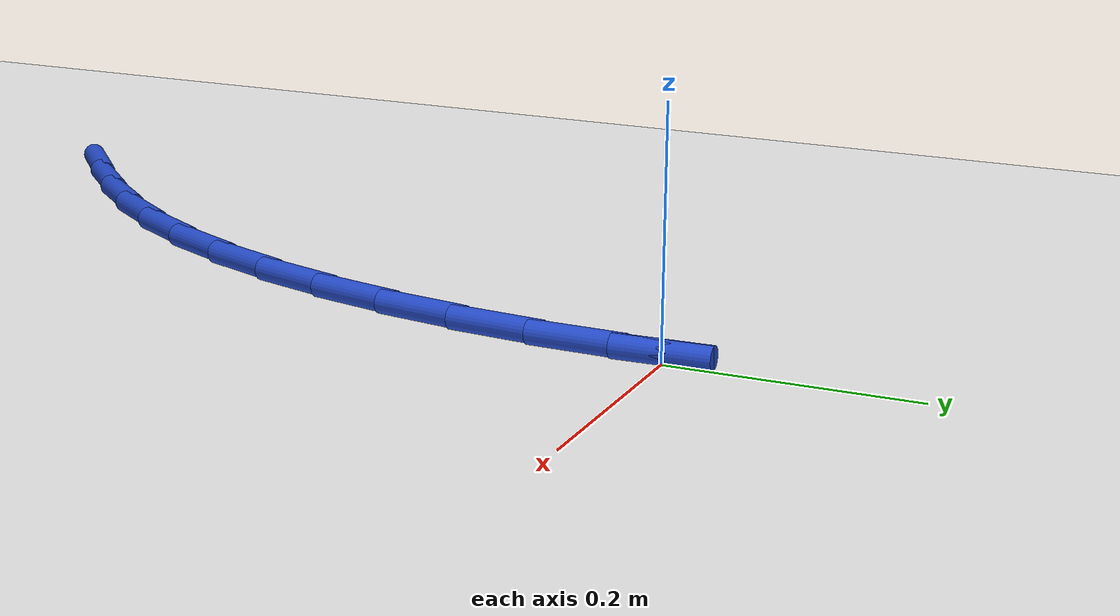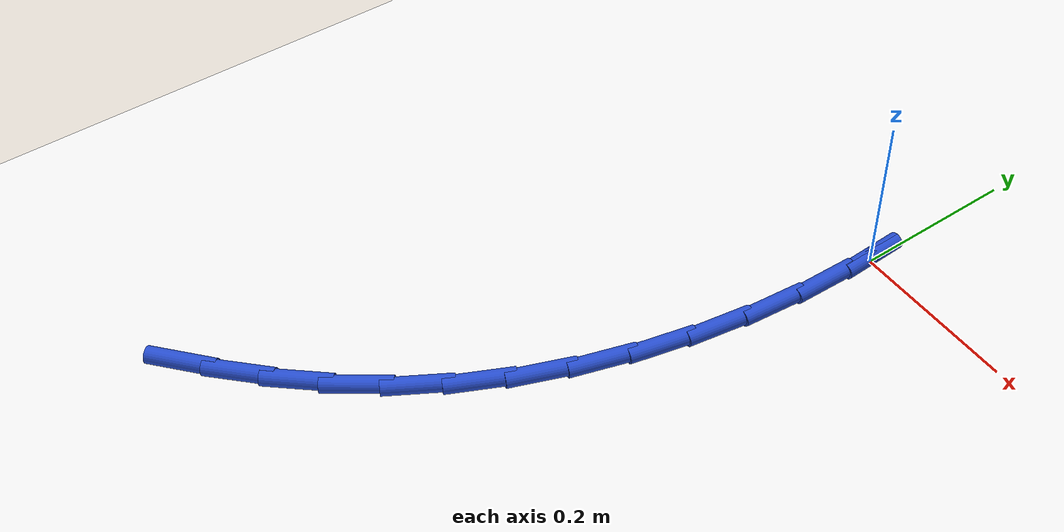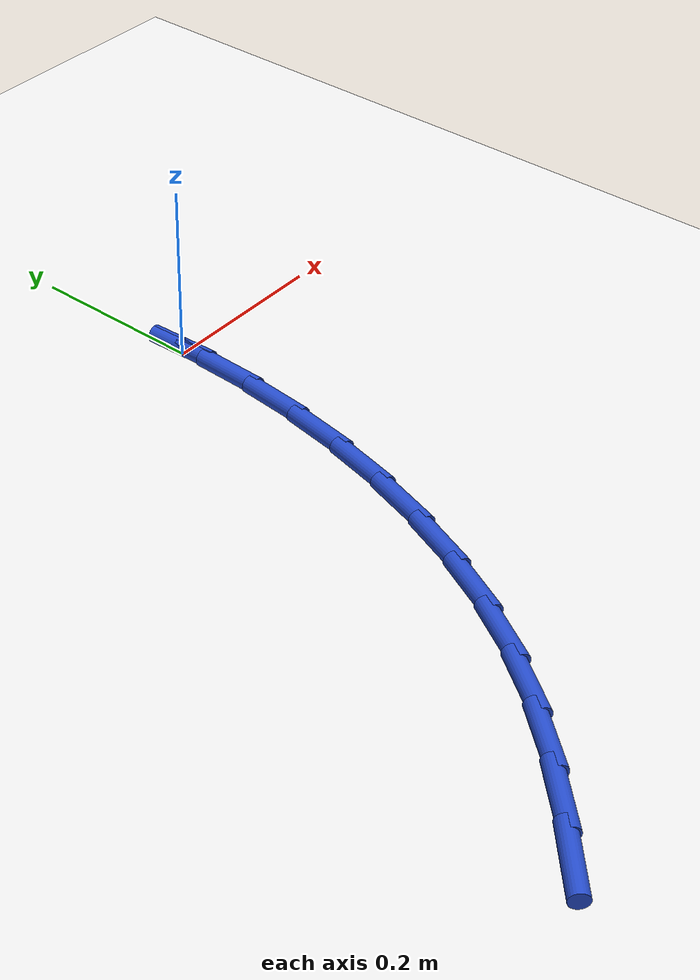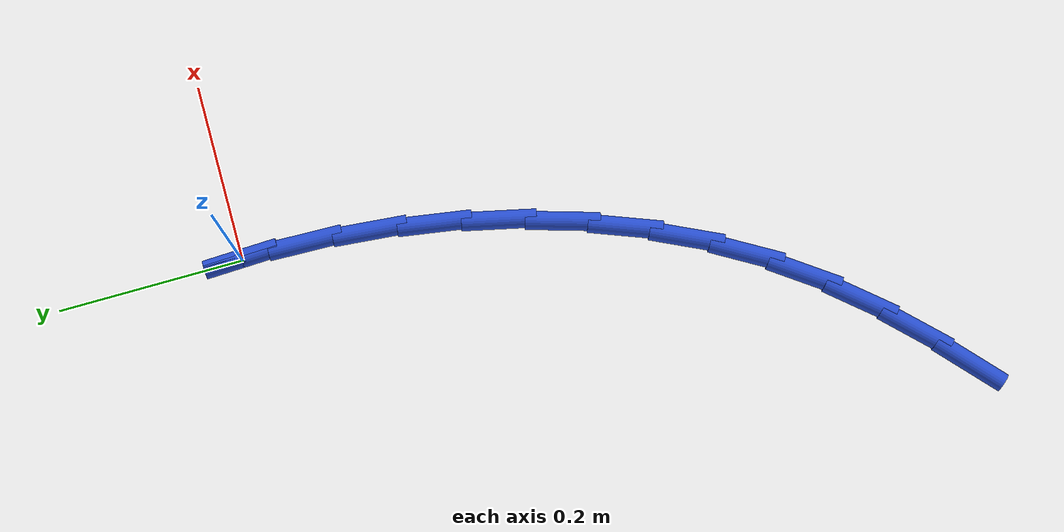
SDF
<sdf version="1.6">
 <world name="default">
  <model name="ground_plane">
   <static>1</static>
   <link name="link">
    <collision name="collision">
     <geometry><plane><normal>0 0 1</normal><size>100 100</size></plane></geometry>
     <surface><friction><ode><mu>100</mu><mu2>50</mu2></ode></friction></surface>
    </collision>
    <visual name="visual">
     <cast_shadows>0</cast_shadows>
     <geometry><plane><normal>0 0 1</normal><size>100 100</size></plane></geometry>
     <material>
      <script><uri>file://media/materials/scripts/gazebo.material</uri><name>Gazebo/WhiteGlow</name></script>
     </material>
    </visual>
   </link>
  </model>
  <model name="line">
   <link name="link_0">
    <pose>-2.42861286636753e-17 -1.1102230246251565e-16 0.01 0 1.57 -1.5355501024435334</pose>
    <collision name="collision">
     <geometry><cylinder><radius>0.01</radius><length>0.08</length></cylinder></geometry>
    </collision>
    <visual name="visual">
     <material>
      <script><name>Gazebo/Blue</name><uri>file://media/materials/scripts/gazebo.material</uri></script>
     </material>
     <geometry><cylinder><radius>0.01</radius><length>0.08</length></cylinder></geometry>
    </visual>
   </link>
   <link name="link_98">
    <pose>-0.3172810094837963 -0.7036614501047879 0.01 0 1.57 0.7166778496604238</pose>
    <collision name="collision">
     <geometry><cylinder><radius>0.01</radius><length>0.08</length></cylinder></geometry>
    </collision>
    <visual name="visual">
     <material>
      <script><name>Gazebo/Blue</name><uri>file://media/materials/scripts/gazebo.material</uri></script>
     </material>
     <geometry><cylinder><radius>0.01</radius><length>0.08</length></cylinder></geometry>
    </visual>
   </link>
   <link name="link_99">
    <pose>-0.2680790243266774 -0.6607963240877502 0.01 0 1.57 0.7740268684180894</pose>
    <collision name="collision">
     <geometry><cylinder><radius>0.01</radius><length>0.08</length></cylinder></geometry>
    </collision>
    <visual name="visual">
     <material>
      <script><name>Gazebo/Blue</name><uri>file://media/materials/scripts/gazebo.material</uri></script>
     </material>
     <geometry><cylinder><radius>0.01</radius><length>0.08</length></cylinder></geometry>
    </visual>
   </link>
   <link name="link_100">
    <pose>-0.22194754238468267 -0.6157022396847387 0.01 0 1.57 0.8479135380681231</pose>
    <collision name="collision">
     <geometry><cylinder><radius>0.01</radius><length>0.08</length></cylinder></geometry>
    </collision>
    <visual name="visual">
     <material>
      <script><name>Gazebo/Blue</name><uri>file://media/materials/scripts/gazebo.material</uri></script>
     </material>
     <geometry><cylinder><radius>0.01</radius><length>0.08</length></cylinder></geometry>
    </visual>
   </link>
   <link name="link_101">
    <pose>-0.17950246353501725 -0.5675884527220438 0.01 0 1.57 0.9368860473775795</pose>
    <collision name="collision">
     <geometry><cylinder><radius>0.01</radius><length>0.08</length></cylinder></geometry>
    </collision>
    <visual name="visual">
     <material>
      <script><name>Gazebo/Blue</name><uri>file://media/materials/scripts/gazebo.material</uri></script>
     </material>
     <geometry><cylinder><radius>0.01</radius><length>0.08</length></cylinder></geometry>
    </visual>
   </link>
   <link name="link_102">
    <pose>-0.14134851913631205 -0.5156868615752079 0.01 0 1.57 1.0298643678648554</pose>
    <collision name="collision">
     <geometry><cylinder><radius>0.01</radius><length>0.08</length></cylinder></geometry>
    </collision>
    <visual name="visual">
     <material>
      <script><name>Gazebo/Blue</name><uri>file://media/materials/scripts/gazebo.material</uri></script>
     </material>
     <geometry><cylinder><radius>0.01</radius><length>0.08</length></cylinder></geometry>
    </visual>
   </link>
   <link name="link_103">
    <pose>-0.10779475489844353 -0.4598288243262971 0.01 0 1.57 1.1166942584253305</pose>
    <collision name="collision">
     <geometry><cylinder><radius>0.01</radius><length>0.08</length></cylinder></geometry>
    </collision>
    <visual name="visual">
     <material>
      <script><name>Gazebo/Blue</name><uri>file://media/materials/scripts/gazebo.material</uri></script>
     </material>
     <geometry><cylinder><radius>0.01</radius><length>0.08</length></cylinder></geometry>
    </visual>
   </link>
   <link name="link_104">
    <pose>-0.07883121380172735 -0.4004924307585803 0.01 0 1.57 1.197543120981379</pose>
    <collision name="collision">
     <geometry><cylinder><radius>0.01</radius><length>0.08</length></cylinder></geometry>
    </collision>
    <visual name="visual">
     <material>
      <script><name>Gazebo/Blue</name><uri>file://media/materials/scripts/gazebo.material</uri></script>
     </material>
     <geometry><cylinder><radius>0.01</radius><length>0.08</length></cylinder></geometry>
    </visual>
   </link>
   <link name="link_105">
    <pose>-0.05443209846784921 -0.3381878846817483 0.01 0 1.57 1.2732347636407892</pose>
    <collision name="collision">
     <geometry><cylinder><radius>0.01</radius><length>0.08</length></cylinder></geometry>
    </collision>
    <visual name="visual">
     <material>
      <script><name>Gazebo/Blue</name><uri>file://media/materials/scripts/gazebo.material</uri></script>
     </material>
     <geometry><cylinder><radius>0.01</radius><length>0.08</length></cylinder></geometry>
    </visual>
   </link>
   <link name="link_106">
    <pose>-0.034571611518493556 -0.2734253899054899 0.01 0 1.57 1.3446667086232633</pose>
    <collision name="collision">
     <geometry><cylinder><radius>0.01</radius><length>0.08</length></cylinder></geometry>
    </collision>
    <visual name="visual">
     <material>
      <script><name>Gazebo/Blue</name><uri>file://media/materials/scripts/gazebo.material</uri></script>
     </material>
     <geometry><cylinder><radius>0.01</radius><length>0.08</length></cylinder></geometry>
    </visual>
   </link>
   <link name="link_107">
    <pose>-0.01922395557534594 -0.2067151502394966 0.01 0 1.57 1.4127566803055143</pose>
    <collision name="collision">
     <geometry><cylinder><radius>0.01</radius><length>0.08</length></cylinder></geometry>
    </collision>
    <visual name="visual">
     <material>
      <script><name>Gazebo/Blue</name><uri>file://media/materials/scripts/gazebo.material</uri></script>
     </material>
     <geometry><cylinder><radius>0.01</radius><length>0.08</length></cylinder></geometry>
    </visual>
   </link>
   <link name="link_108">
    <pose>-0.008363333260091008 -0.13856736949345655 0.01 0 1.57 1.4784161534788864</pose>
    <collision name="collision">
     <geometry><cylinder><radius>0.01</radius><length>0.08</length></cylinder></geometry>
    </collision>
    <visual name="visual">
     <material>
      <script><name>Gazebo/Blue</name><uri>file://media/materials/scripts/gazebo.material</uri></script>
     </material>
     <geometry><cylinder><radius>0.01</radius><length>0.08</length></cylinder></geometry>
    </visual>
   </link>
   <link name="link_109">
    <pose>-0.001963947194414081 -0.06949225147706163 0.01 0 1.57 1.5425424635066252</pose>
    <collision name="collision">
     <geometry><cylinder><radius>0.01</radius><length>0.08</length></cylinder></geometry>
    </collision>
    <visual name="visual">
     <material>
      <script><name>Gazebo/Blue</name><uri>file://media/materials/scripts/gazebo.material</uri></script>
     </material>
     <geometry><cylinder><radius>0.01</radius><length>0.08</length></cylinder></geometry>
    </visual>
   </link>
   <link name="link_110">
    <pose>-3.122502256758253e-17 -4.163336342344337e-17 0.01 0 1.57 -1.5355699371514582</pose>
    <collision name="collision">
     <geometry><cylinder><radius>0.01</radius><length>0.08</length></cylinder></geometry>
    </collision>
    <visual name="visual">
     <material>
      <script><name>Gazebo/Blue</name><uri>file://media/materials/scripts/gazebo.material</uri></script>
     </material>
     <geometry><cylinder><radius>0.01</radius><length>0.08</length></cylinder></geometry>
    </visual>
   </link>
  </model>
 </world>
</sdf>
